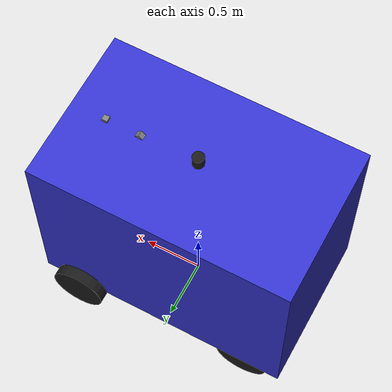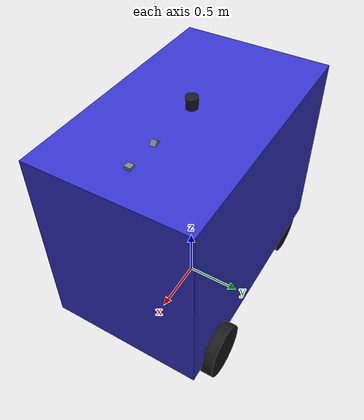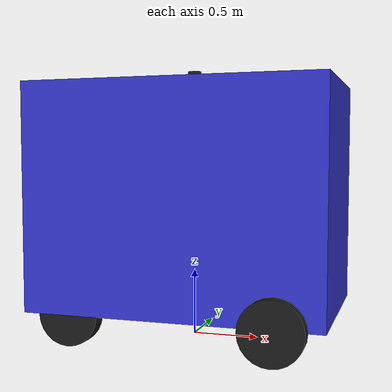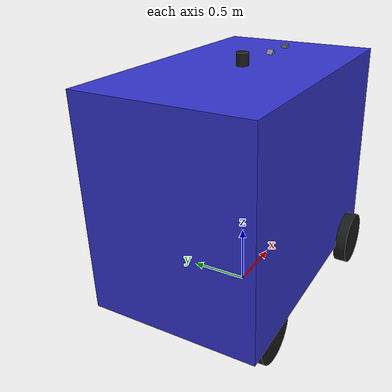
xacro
<?xml version="1.0"?>

<robot name="otonom_arac" xmlns:xacro="http://www.ros.org/wiki/xacro">

  <!-- PROPERTY TANIMLARI (Sabitler) -->

  <xacro:property name="chassis_length" value="2.22"/>
  <xacro:property name="chassis_width" value="1.35"/>
  <xacro:property name="chassis_height" value="1.70"/>
  <xacro:property name="chassis_mass" value="250.0"/>  <!-- Toplam 300kg - tekerlekler 50kg -->

  <xacro:property name="wheelbase" value="1.52"/>
  <xacro:property name="track_width_front" value="1.43"/>
  <xacro:property name="track_width_rear" value="1.22"/>

  <xacro:property name="wheel_radius" value="0.23"/>  <!-- 46cm çap = 23cm yarıçap -->
  <xacro:property name="wheel_thickness" value="0.11"/>
  <xacro:property name="wheel_mass" value="12.5"/>  <!-- 4 tekerlek = 50kg -->

  <xacro:property name="max_steering_angle" value="0.785"/>  <!-- 45° = 0.785 radyan -->

  <!-- Renkler -->
  <material name="blue">
    <color rgba="0.2 0.2 0.8 1.0"/>
  </material>
  <material name="black">
    <color rgba="0.1 0.1 0.1 1.0"/>
  </material>
  <material name="gray">
    <color rgba="0.5 0.5 0.5 1.0"/>
  </material>

  <!-- CHASSIS (ANA GÖVDE) -->

  <link name="base_link"/>

  <joint name="base_to_chassis" type="fixed">
    <parent link="base_link"/>
    <child link="chassis"/>
    <origin xyz="0 0 ${wheel_radius}" rpy="0 0 0"/>
  </joint>

  <link name="chassis">
    <visual>
      <origin xyz="0 0 ${chassis_height/2}" rpy="0 0 0"/>
      <geometry>
        <box size="${chassis_length} ${chassis_width} ${chassis_height}"/>
      </geometry>
      <material name="blue"/>
    </visual>

    <collision>
      <origin xyz="0 0 ${chassis_height/2}" rpy="0 0 0"/>
      <geometry>
        <box size="${chassis_length} ${chassis_width} ${chassis_height}"/>
      </geometry>
    </collision>

    <inertial>
      <origin xyz="0 0 ${chassis_height/2}" rpy="0 0 0"/>
      <mass value="${chassis_mass}"/>
      <!-- TODO KİŞİ 1: Inertia tensorünü hesaplayın -->
      <!-- Box inertia: Ixx = m/12 * (h² + d²), Iyy = m/12 * (l² + h²), Izz = m/12 * (l² + d²) -->
      <inertia
        ixx="${chassis_mass/12 * (chassis_height*chassis_height + chassis_width*chassis_width)}"
        iyy="${chassis_mass/12 * (chassis_length*chassis_length + chassis_height*chassis_height)}"
        izz="${chassis_mass/12 * (chassis_length*chassis_length + chassis_width*chassis_width)}"
        ixy="0" ixz="0" iyz="0"/>
    </inertial>
  </link>

  <!-- TEKERLEK MAKROLARI -->

  <xacro:macro name="wheel" params="prefix parent x_offset y_offset z_offset">
    <link name="${prefix}_wheel">
      <visual>
        <origin xyz="0 0 0" rpy="1.5708 0 0"/>  <!-- 90° döndür (yatay tekerlek) -->
        <geometry>
          <cylinder radius="${wheel_radius}" length="${wheel_thickness}"/>
        </geometry>
        <material name="black"/>
      </visual>

      <collision>
        <origin xyz="0 0 0" rpy="1.5708 0 0"/>
        <geometry>
          <cylinder radius="${wheel_radius}" length="${wheel_thickness}"/>
        </geometry>
      </collision>

      <inertial>
        <origin xyz="0 0 0" rpy="1.5708 0 0"/>
        <mass value="${wheel_mass}"/>
        <!-- Silindir inertia: Ixx=Iyy = m/12 * (3r² + h²), Izz = m/2 * r² -->
        <inertia
          ixx="${wheel_mass/12 * (3*wheel_radius*wheel_radius + wheel_thickness*wheel_thickness)}"
          iyy="${wheel_mass/12 * (3*wheel_radius*wheel_radius + wheel_thickness*wheel_thickness)}"
          izz="${wheel_mass/2 * wheel_radius*wheel_radius}"
          ixy="0" ixz="0" iyz="0"/>
      </inertial>
    </link>

    <!-- TODO KİŞİ 1: Joint tipini ayarlayın -->
    <!-- Ön tekerlekler için: continuous (sürekli dönüş) -->
    <!-- Arka tekerlekler için: continuous (motorlu) -->
    <joint name="${prefix}_wheel_joint" type="continuous">
      <parent link="${parent}"/>
      <child link="${prefix}_wheel"/>
      <origin xyz="${x_offset} ${y_offset} ${z_offset}" rpy="0 0 0"/>
      <axis xyz="0 1 0"/>  <!-- Y ekseni etrafında dönüş -->
    </joint>
  </xacro:macro>

  <!-- DİREKSİYON LİNKLERİ (Ackermann için) -->

  <!-- Sol ön direksiyon -->
  <link name="front_left_steering_link"/>

  <joint name="front_left_steering_joint" type="revolute">
    <parent link="chassis"/>
    <child link="front_left_steering_link"/>
    <origin xyz="${wheelbase/2} ${track_width_front/2} 0" rpy="0 0 0"/>
    <axis xyz="0 0 1"/>  <!-- Z ekseni etrafında direksiyon -->
    <limit lower="${-max_steering_angle}" upper="${max_steering_angle}"
           effort="100" velocity="1.0"/>
  </joint>

  <!-- Sağ ön direksiyon -->
  <link name="front_right_steering_link"/>

  <joint name="front_right_steering_joint" type="revolute">
    <parent link="chassis"/>
    <child link="front_right_steering_link"/>
    <origin xyz="${wheelbase/2} ${-track_width_front/2} 0" rpy="0 0 0"/>
    <axis xyz="0 0 1"/>
    <limit lower="${-max_steering_angle}" upper="${max_steering_angle}"
           effort="100" velocity="1.0"/>
  </joint>

  <!-- TEKERLEKLER -->

  <!-- Ön Tekerlekler (direksiyon linklerine bağlı) -->
  <xacro:wheel prefix="front_left" parent="front_left_steering_link"
               x_offset="0" y_offset="0" z_offset="0"/>
  <xacro:wheel prefix="front_right" parent="front_right_steering_link"
               x_offset="0" y_offset="0" z_offset="0"/>

  <!-- Arka Tekerlekler (chassis'e doğrudan bağlı) -->
  <xacro:wheel prefix="rear_left" parent="chassis"
               x_offset="${-wheelbase/2}" y_offset="${track_width_rear/2}" z_offset="0"/>
  <xacro:wheel prefix="rear_right" parent="chassis"
               x_offset="${-wheelbase/2}" y_offset="${-track_width_rear/2}" z_offset="0"/>

  <!-- KAMERALAR -->

  <!-- Kamera 1: Lane Detection (aşağı bakıyor) -->
  <link name="camera_lane_link">
    <visual>
      <origin xyz="0 0 0" rpy="0 0 0"/>
      <geometry>
        <box size="0.05 0.05 0.05"/>
      </geometry>
      <material name="gray"/>
    </visual>

    <collision>
      <origin xyz="0 0 0" rpy="0 0 0"/>
      <geometry>
        <box size="0.05 0.05 0.05"/>
      </geometry>
    </collision>

    <inertial>
      <mass value="0.1"/>
      <inertia ixx="0.0001" iyy="0.0001" izz="0.0001" ixy="0" ixz="0" iyz="0"/>
    </inertial>
  </link>

  <joint name="camera_lane_joint" type="fixed">
    <parent link="chassis"/>
    <child link="camera_lane_link"/>
    <!-- TODO KİŞİ 1: Kamera pozisyonunu ayarlayın (üstte, aşağı bakacak şekilde) -->
    <origin xyz="0.5 0 ${chassis_height}" rpy="0 0.785 0"/>  <!-- 45° aşağı -->
  </joint>

  <!-- Kamera 2: Sign Recognition (öne bakıyor) -->
  <link name="camera_sign_link">
    <visual>
      <origin xyz="0 0 0" rpy="0 0 0"/>
      <geometry>
        <box size="0.05 0.05 0.05"/>
      </geometry>
      <material name="gray"/>
    </visual>

    <collision>
      <origin xyz="0 0 0" rpy="0 0 0"/>
      <geometry>
        <box size="0.05 0.05 0.05"/>
      </geometry>
    </collision>

    <inertial>
      <mass value="0.1"/>
      <inertia ixx="0.0001" iyy="0.0001" izz="0.0001" ixy="0" ixz="0" iyz="0"/>
    </inertial>
  </link>

  <joint name="camera_sign_joint" type="fixed">
    <parent link="chassis"/>
    <child link="camera_sign_link"/>
    <!-- TODO KİŞİ 1: Kamera pozisyonunu ayarlayın (üstte, öne bakacak şekilde) -->
    <origin xyz="0.8 0 ${chassis_height}" rpy="0 0 0"/>  <!-- Düz öne -->
  </joint>

  <!-- LIDAR -->

  <link name="lidar_link">
    <visual>
      <origin xyz="0 0 0" rpy="0 0 0"/>
      <geometry>
        <cylinder radius="0.05" length="0.1"/>
      </geometry>
      <material name="black"/>
    </visual>

    <collision>
      <origin xyz="0 0 0" rpy="0 0 0"/>
      <geometry>
        <cylinder radius="0.05" length="0.1"/>
      </geometry>
    </collision>

    <inertial>
      <mass value="0.2"/>
      <inertia ixx="0.0001" iyy="0.0001" izz="0.0001" ixy="0" ixz="0" iyz="0"/>
    </inertial>
  </link>

  <joint name="lidar_joint" type="fixed">
    <parent link="chassis"/>
    <child link="lidar_link"/>
    <!-- TODO KİŞİ 1: Lidar pozisyonunu ayarlayın (en üstte, merkez) -->
    <origin xyz="0 0 ${chassis_height + 0.05}" rpy="0 0 0"/>
  </joint>

  <!-- GAZEBO PLUGIN'LERİ -->

  <!-- TODO KİŞİ 1: Aşağıdaki plugin'leri aktif edin -->

  <!-- Ackermann Drive Controller -->
  <gazebo>
    <plugin name="ackermann_drive" filename="libgazebo_ros_ackermann_drive.so">

      <!-- Wheel joints -->
      <front_left_joint>front_left_steering_joint</front_left_joint>
      <front_right_joint>front_right_steering_joint</front_right_joint>
      <rear_left_joint>rear_left_wheel_joint</rear_left_joint>
      <rear_right_joint>rear_right_wheel_joint</rear_right_joint>

      <!-- Steering joints -->
      <front_left_steering_joint>front_left_steering_joint</front_left_steering_joint>
      <front_right_steering_joint>front_right_steering_joint</front_right_steering_joint>

      <!-- Kinematics -->
      <wheel_separation>${track_width_rear}</wheel_separation>
      <wheelbase>${wheelbase}</wheelbase>
      <wheel_diameter>${wheel_radius * 2}</wheel_diameter>

      <!-- Limits -->
      <max_steer>${max_steering_angle}</max_steer>
      <max_steering_angle>${max_steering_angle}</max_steering_angle>
      <max_speed>5.0</max_speed>

      <!-- Topics -->
      <command_topic>/cmd_vel</command_topic>
      <odometry_topic>/odom</odometry_topic>
      <odometry_frame>odom</odometry_frame>
      <robot_base_frame>base_link</robot_base_frame>

      <publish_odom>true</publish_odom>
      <publish_odom_tf>true</publish_odom_tf>
      <publish_wheel_tf>true</publish_wheel_tf>

      <update_rate>50.0</update_rate>

    </plugin>
  </gazebo>

  <!-- Lane Detection Camera Plugin -->
  <gazebo reference="camera_lane_link">
    <sensor type="camera" name="camera_lane">
      <update_rate>30.0</update_rate>
      <camera name="lane_camera">
        <horizontal_fov>1.3962634</horizontal_fov>
        <image>
          <width>1280</width>
          <height>720</height>
          <format>R8G8B8</format>
        </image>
        <clip>
          <near>0.1</near>
          <far>100</far>
        </clip>
      </camera>

      <plugin name="camera_lane_controller" filename="libgazebo_ros_camera.so">
        <alwaysOn>true</alwaysOn>
        <updateRate>30.0</updateRate>
        <cameraName>camera/lane</cameraName>
        <imageTopicName>/camera/lane/image_raw</imageTopicName>
        <cameraInfoTopicName>/camera/lane/camera_info</cameraInfoTopicName>
        <frameName>camera_lane_link</frameName>
      </plugin>
    </sensor>
  </gazebo>

  <!-- Sign Recognition Camera Plugin -->
  <gazebo reference="camera_sign_link">
    <sensor type="camera" name="camera_sign">
      <update_rate>30.0</update_rate>
      <camera name="sign_camera">
        <horizontal_fov>1.3962634</horizontal_fov>
        <image>
          <width>1280</width>
          <height>720</height>
          <format>R8G8B8</format>
        </image>
        <clip>
          <near>0.1</near>
          <far>100</far>
        </clip>
      </camera>

      <plugin name="camera_sign_controller" filename="libgazebo_ros_camera.so">
        <alwaysOn>true</alwaysOn>
        <updateRate>30.0</updateRate>
        <cameraName>camera/sign</cameraName>
        <imageTopicName>/camera/sign/image_raw</imageTopicName>
        <cameraInfoTopicName>/camera/sign/camera_info</cameraInfoTopicName>
        <frameName>camera_sign_link</frameName>
      </plugin>
    </sensor>
  </gazebo>

  <!-- Lidar Plugin -->
  <gazebo reference="lidar_link">
    <sensor type="ray" name="lidar">
      <pose>0 0 0 0 0 0</pose>
      <visualize>true</visualize>
      <update_rate>10</update_rate>
      <ray>
        <scan>
          <horizontal>
            <samples>360</samples>
            <resolution>1</resolution>
            <min_angle>0.0</min_angle>
            <max_angle>6.28319</max_angle>
          </horizontal>
        </scan>
        <range>
          <min>0.15</min>
          <max>12.0</max>
          <resolution>0.01</resolution>
        </range>
        <noise>
          <type>gaussian</type>
          <mean>0.0</mean>
          <stddev>0.01</stddev>
        </noise>
      </ray>

      <plugin name="lidar_controller" filename="libgazebo_ros_ray_sensor.so">
        <ros>
          <namespace>/</namespace>
          <remapping>~/out:=/scan</remapping>
        </ros>
        <output_type>sensor_msgs/LaserScan</output_type>
        <frame_name>lidar_link</frame_name>
      </plugin>
    </sensor>
  </gazebo>

  <!-- Gazebo Malzeme Ayarları -->
  <gazebo reference="chassis">
    <material>Gazebo/Blue</material>
  </gazebo>

  <gazebo reference="front_left_wheel">
    <material>Gazebo/Black</material>
    <mu1>1.0</mu1>
    <mu2>1.0</mu2>
  </gazebo>

  <gazebo reference="front_right_wheel">
    <material>Gazebo/Black</material>
    <mu1>1.0</mu1>
    <mu2>1.0</mu2>
  </gazebo>

  <gazebo reference="rear_left_wheel">
    <material>Gazebo/Black</material>
    <mu1>1.0</mu1>
    <mu2>1.0</mu2>
  </gazebo>

  <gazebo reference="rear_right_wheel">
    <material>Gazebo/Black</material>
    <mu1>1.0</mu1>
    <mu2>1.0</mu2>
  </gazebo>

</robot>
